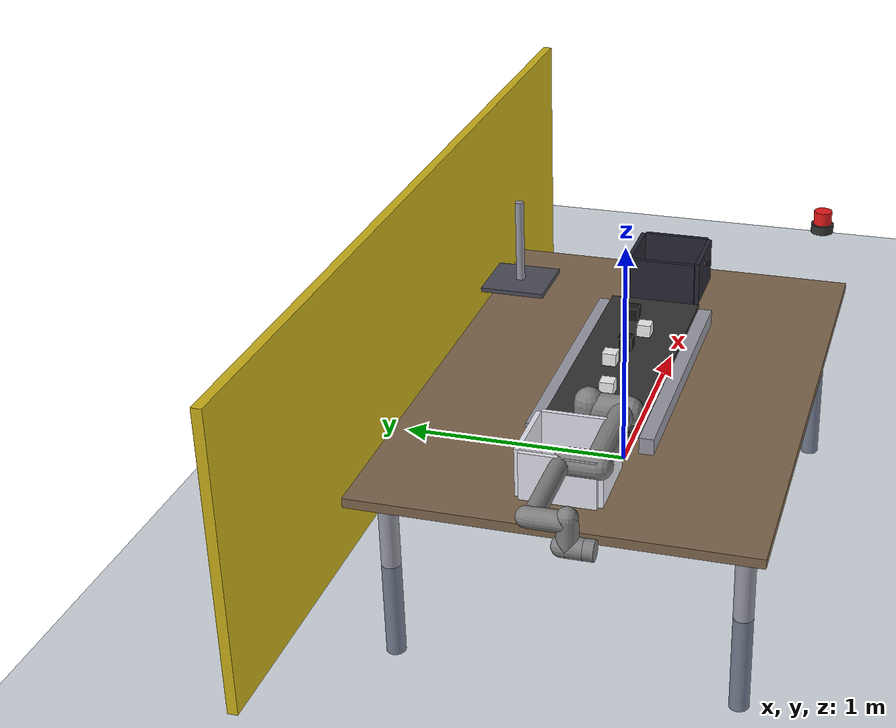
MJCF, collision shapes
<mujoco model="ur5e_sorting_station">
  <compiler angle="radian" autolimits="true"/>

  <option integrator="implicitfast" timestep="0.002"/>

  <visual>
    <headlight diffuse="0.6 0.6 0.6" ambient="0.3 0.3 0.3" specular="0 0 0"/>
    <rgba haze="0.15 0.25 0.35 1"/>
    <global azimuth="120" elevation="-20"/>
  </visual>

  <asset>
    <texture type="skybox" builtin="gradient" rgb1="0.3 0.5 0.7" rgb2="0 0 0" width="512" height="512"/>
    <texture name="groundplane" type="2d" builtin="checker" rgb1="0.2 0.3 0.4" rgb2="0.1 0.2 0.3" width="300" height="300" mark="edge" markrgb="0.8 0.8 0.8"/>
    <material name="groundplane" texture="groundplane" texrepeat="5 5" texuniform="true" reflectance="0.2"/>

    <!-- Conveyor textures -->
    <texture name="conveyor_belt" type="2d" builtin="checker" rgb1="0.15 0.15 0.15" rgb2="0.25 0.25 0.25" width="100" height="100"/>
    <material name="conveyor_mat" texture="conveyor_belt" texrepeat="20 2" reflectance="0.1"/>

    <!-- Box materials -->
    <material name="white_box" rgba="0.95 0.95 0.95 1" specular="0.5" shininess="0.3"/>
    <material name="black_box" rgba="0.1 0.1 0.1 1" specular="0.3" shininess="0.2"/>

    <!-- Bin materials -->
    <material name="white_bin" rgba="0.9 0.9 0.95 0.8" specular="0.3" shininess="0.2"/>
    <material name="black_bin" rgba="0.15 0.15 0.2 0.8" specular="0.3" shininess="0.2"/>

    <!-- Environment materials -->
    <material name="table" rgba="0.5 0.4 0.3 1"/>
    <material name="metal" rgba="0.6 0.6 0.65 1" specular="0.8" shininess="0.5"/>
    <material name="plastic" rgba="0.3 0.3 0.35 1" specular="0.2" shininess="0.1"/>

    <!-- UR5e mesh assets -->
    <mesh file="assets/base_0.obj"/>
    <mesh file="assets/base_1.obj"/>
    <mesh file="assets/shoulder_0.obj"/>
    <mesh file="assets/shoulder_1.obj"/>
    <mesh file="assets/shoulder_2.obj"/>
    <mesh file="assets/upperarm_0.obj"/>
    <mesh file="assets/upperarm_1.obj"/>
    <mesh file="assets/upperarm_2.obj"/>
    <mesh file="assets/upperarm_3.obj"/>
    <mesh file="assets/forearm_0.obj"/>
    <mesh file="assets/forearm_1.obj"/>
    <mesh file="assets/forearm_2.obj"/>
    <mesh file="assets/forearm_3.obj"/>
    <mesh file="assets/wrist1_0.obj"/>
    <mesh file="assets/wrist1_1.obj"/>
    <mesh file="assets/wrist1_2.obj"/>
    <mesh file="assets/wrist2_0.obj"/>
    <mesh file="assets/wrist2_1.obj"/>
    <mesh file="assets/wrist2_2.obj"/>
    <mesh file="assets/wrist3.obj"/>

    <!-- UR5e materials -->
    <material name="black" rgba="0.033 0.033 0.033 1"/>
    <material name="jointgray" rgba="0.278 0.278 0.278 1"/>
    <material name="linkgray" rgba="0.82 0.82 0.82 1"/>
    <material name="urblue" rgba="0.49 0.678 0.8 1"/>
  </asset>

  <default>
    <geom contype="1" conaffinity="1" friction="1 0.5 0.005"/>
    <joint damping="1" armature="0.01"/>
    <default class="box_collision">
      <geom type="box" size="0.025 0.025 0.025" mass="0.05" material="white_box"/>
    </default>
    <default class="ur5e">
      <material specular="0.5" shininess="0.25"/>
      <joint axis="0 1 0" range="-6.28319 6.28319" armature="0.1"/>
      <general gaintype="fixed" biastype="affine" ctrlrange="-6.2831 6.2831" gainprm="2000" biasprm="0 -2000 -400"
        forcerange="-150 150"/>
      <default class="size3">
        <default class="size3_limited">
          <joint range="-3.1415 3.1415"/>
          <general ctrlrange="-3.1415 3.1415"/>
        </default>
      </default>
      <default class="size1">
        <general gainprm="500" biasprm="0 -500 -100" forcerange="-28 28"/>
      </default>
      <default class="visual">
        <geom type="mesh" contype="0" conaffinity="0" group="2"/>
      </default>
      <default class="collision">
        <geom type="capsule" group="3"/>
        <default class="eef_collision">
          <geom type="cylinder"/>
        </default>
      </default>
      <site size="0.001" rgba="0.5 0.5 0.5 0.3" group="4"/>
    </default>
  </default>

  <worldbody>
    <!-- Lighting -->
    <light pos="0 0 3" dir="0 0 -1" directional="false" cutoff="60" exponent="1" diffuse="0.5 0.5 0.5" specular="0.3 0.3 0.3"/>
    <light pos="2 2 3" dir="-0.5 -0.5 -1" directional="false" cutoff="60" exponent="1" diffuse="0.4 0.4 0.4" specular="0.2 0.2 0.2"/>
    <light pos="-2 -2 3" dir="0.5 0.5 -1" directional="false" cutoff="60" exponent="1" diffuse="0.4 0.4 0.4" specular="0.2 0.2 0.2"/>

    <!-- Ground -->
    <geom name="floor" type="plane" size="5 5 0.1" material="groundplane" condim="3"/>

    <!-- Main work table -->
    <body name="work_table" pos="0 0 0.4">
      <geom name="table_top" type="box" size="1.2 0.8 0.02" pos="0 0 -0.02" material="table" mass="50"/>
      <geom name="table_leg1" type="cylinder" size="0.04 0.4" pos="1.0 0.7 -0.42" material="metal" mass="5"/>
      <geom name="table_leg2" type="cylinder" size="0.04 0.4" pos="1.0 -0.7 -0.42" material="metal" mass="5"/>
      <geom name="table_leg3" type="cylinder" size="0.04 0.4" pos="-1.0 0.7 -0.42" material="metal" mass="5"/>
      <geom name="table_leg4" type="cylinder" size="0.04 0.4" pos="-1.0 -0.7 -0.42" material="metal" mass="5"/>
    </body>

    <!-- Conveyor Belt System -->
    <body name="conveyor_base" pos="0 0 0.42">
      <!-- Conveyor frame -->
      <geom name="conveyor_frame_left" type="box" size="0.6 0.03 0.05" pos="0 -0.23 0" material="metal" mass="10"/>
      <geom name="conveyor_frame_right" type="box" size="0.6 0.03 0.05" pos="0 0.23 0" material="metal" mass="10"/>

      <!-- Conveyor belt surface (moving part would need actuator in real system) -->
      <geom name="conveyor_belt" type="box" size="0.6 0.2 0.01" pos="0 0 0.06" material="conveyor_mat" mass="5" friction="0.8 0.4 0.002"/>

      <!-- Conveyor support -->
      <geom name="conveyor_support1" type="cylinder" size="0.03 0.05" pos="-0.5 -0.23 -0.05" material="metal"/>
      <geom name="conveyor_support2" type="cylinder" size="0.03 0.05" pos="-0.5 0.23 -0.05" material="metal"/>
      <geom name="conveyor_support3" type="cylinder" size="0.03 0.05" pos="0.5 -0.23 -0.05" material="metal"/>
      <geom name="conveyor_support4" type="cylinder" size="0.03 0.05" pos="0.5 0.23 -0.05" material="metal"/>
    </body>

    <!-- White Boxes on conveyor (3 white boxes) -->
    <body name="white_box_1" pos="-0.3 0 0.515">
      <freejoint/>
      <geom name="wb1_geom" type="box" size="0.03 0.03 0.03" material="white_box" mass="0.08" friction="1.0 0.5 0.005"/>
      <site name="wb1_center" pos="0 0 0" size="0.005"/>
    </body>

    <body name="white_box_2" pos="-0.05 0.05 0.515">
      <freejoint/>
      <geom name="wb2_geom" type="box" size="0.03 0.03 0.03" material="white_box" mass="0.08" friction="1.0 0.5 0.005"/>
      <site name="wb2_center" pos="0 0 0" size="0.005"/>
    </body>

    <body name="white_box_3" pos="0.25 -0.03 0.515">
      <freejoint/>
      <geom name="wb3_geom" type="box" size="0.03 0.03 0.03" material="white_box" mass="0.08" friction="1.0 0.5 0.005"/>
      <site name="wb3_center" pos="0 0 0" size="0.005"/>
    </body>

    <!-- Black Boxes on conveyor (3 black boxes) -->
    <body name="black_box_1" pos="-0.45 -0.04 0.515">
      <freejoint/>
      <geom name="bb1_geom" type="box" size="0.03 0.03 0.03" material="black_box" mass="0.08" friction="1.0 0.5 0.005"/>
      <site name="bb1_center" pos="0 0 0" size="0.005"/>
    </body>

    <body name="black_box_2" pos="0.1 0.02 0.515">
      <freejoint/>
      <geom name="bb2_geom" type="box" size="0.03 0.03 0.03" material="black_box" mass="0.08" friction="1.0 0.5 0.005"/>
      <site name="bb2_center" pos="0 0 0" size="0.005"/>
    </body>

    <body name="black_box_3" pos="0.4 0.06 0.515">
      <freejoint/>
      <geom name="bb3_geom" type="box" size="0.03 0.03 0.03" material="black_box" mass="0.08" friction="1.0 0.5 0.005"/>
      <site name="bb3_center" pos="0 0 0" size="0.005"/>
    </body>

    <!-- Left Sorting Bin (for white boxes) -->
    <body name="white_bin" pos="-0.9 0 0.42">
      <!-- Bin base -->
      <geom name="white_bin_base" type="box" size="0.15 0.15 0.01" pos="0 0 0" material="white_bin" mass="2"/>
      <!-- Bin walls -->
      <geom name="white_bin_wall_front" type="box" size="0.15 0.01 0.1" pos="0 -0.16 0.1" material="white_bin" mass="0.5"/>
      <geom name="white_bin_wall_back" type="box" size="0.15 0.01 0.1" pos="0 0.16 0.1" material="white_bin" mass="0.5"/>
      <geom name="white_bin_wall_left" type="box" size="0.01 0.15 0.1" pos="-0.16 0 0.1" material="white_bin" mass="0.5"/>
      <geom name="white_bin_wall_right" type="box" size="0.01 0.15 0.1" pos="0.16 0 0.1" material="white_bin" mass="0.5"/>

      <!-- Label -->
      <site name="white_bin_label" pos="0 -0.17 0.15" size="0.02" rgba="1 1 1 1"/>
    </body>

    <!-- Right Sorting Bin (for black boxes) -->
    <body name="black_bin" pos="0.9 0 0.42">
      <!-- Bin base -->
      <geom name="black_bin_base" type="box" size="0.15 0.15 0.01" pos="0 0 0" material="black_bin" mass="2"/>
      <!-- Bin walls -->
      <geom name="black_bin_wall_front" type="box" size="0.15 0.01 0.1" pos="0 -0.16 0.1" material="black_bin" mass="0.5"/>
      <geom name="black_bin_wall_back" type="box" size="0.15 0.01 0.1" pos="0 0.16 0.1" material="black_bin" mass="0.5"/>
      <geom name="black_bin_wall_left" type="box" size="0.01 0.15 0.1" pos="-0.16 0 0.1" material="black_bin" mass="0.5"/>
      <geom name="black_bin_wall_right" type="box" size="0.01 0.15 0.1" pos="0.16 0 0.1" material="black_bin" mass="0.5"/>

      <!-- Label -->
      <site name="black_bin_label" pos="0 -0.17 0.15" size="0.02" rgba="0.1 0.1 0.1 1"/>
    </body>

    <!-- UR5e Robot Arm -->
    <body name="base" pos="-0.6 0 0.42" quat="0 0 0 -1" childclass="ur5e">
      <inertial mass="4.0" pos="0 0 0" diaginertia="0.00443333156 0.00443333156 0.0072"/>
      <geom mesh="base_0" material="black" class="visual"/>
      <geom mesh="base_1" material="jointgray" class="visual"/>
      <body name="shoulder_link" pos="0 0 0.163">
        <inertial mass="3.7" pos="0 0 0" diaginertia="0.0102675 0.0102675 0.00666"/>
        <joint name="shoulder_pan_joint" class="size3" axis="0 0 1"/>
        <geom mesh="shoulder_0" material="urblue" class="visual"/>
        <geom mesh="shoulder_1" material="black" class="visual"/>
        <geom mesh="shoulder_2" material="jointgray" class="visual"/>
        <geom class="collision" size="0.06 0.06" pos="0 0 -0.04"/>
        <body name="upper_arm_link" pos="0 0.138 0" quat="1 0 1 0">
          <inertial mass="8.393" pos="0 0 0.2125" diaginertia="0.133886 0.133886 0.0151074"/>
          <joint name="shoulder_lift_joint" class="size3"/>
          <geom mesh="upperarm_0" material="linkgray" class="visual"/>
          <geom mesh="upperarm_1" material="black" class="visual"/>
          <geom mesh="upperarm_2" material="jointgray" class="visual"/>
          <geom mesh="upperarm_3" material="urblue" class="visual"/>
          <geom class="collision" pos="0 -0.04 0" quat="1 1 0 0" size="0.06 0.06"/>
          <geom class="collision" size="0.05 0.2" pos="0 0 0.2"/>
          <body name="forearm_link" pos="0 -0.131 0.425">
            <inertial mass="2.275" pos="0 0 0.196" diaginertia="0.0311796 0.0311796 0.004095"/>
            <joint name="elbow_joint" class="size3_limited"/>
            <geom mesh="forearm_0" material="urblue" class="visual"/>
            <geom mesh="forearm_1" material="linkgray" class="visual"/>
            <geom mesh="forearm_2" material="black" class="visual"/>
            <geom mesh="forearm_3" material="jointgray" class="visual"/>
            <geom class="collision" pos="0 0.08 0" quat="1 1 0 0" size="0.055 0.06"/>
            <geom class="collision" size="0.038 0.19" pos="0 0 0.2"/>
            <body name="wrist_1_link" pos="0 0 0.392" quat="1 0 1 0">
              <inertial mass="1.219" pos="0 0.127 0" diaginertia="0.0025599 0.0025599 0.0021942"/>
              <joint name="wrist_1_joint" class="size1"/>
              <geom mesh="wrist1_0" material="black" class="visual"/>
              <geom mesh="wrist1_1" material="urblue" class="visual"/>
              <geom mesh="wrist1_2" material="jointgray" class="visual"/>
              <geom class="collision" pos="0 0.05 0" quat="1 1 0 0" size="0.04 0.07"/>
              <body name="wrist_2_link" pos="0 0.127 0">
                <inertial mass="1.219" pos="0 0 0.1" diaginertia="0.0025599 0.0025599 0.0021942"/>
                <joint name="wrist_2_joint" axis="0 0 1" class="size1"/>
                <geom mesh="wrist2_0" material="black" class="visual"/>
                <geom mesh="wrist2_1" material="urblue" class="visual"/>
                <geom mesh="wrist2_2" material="jointgray" class="visual"/>
                <geom class="collision" size="0.04 0.06" pos="0 0 0.04"/>
                <geom class="collision" pos="0 0.02 0.1" quat="1 1 0 0" size="0.04 0.04"/>
                <body name="wrist_3_link" pos="0 0 0.1">
                  <inertial mass="0.1889" pos="0 0.0771683 0" quat="1 0 0 1"
                    diaginertia="0.000132134 9.90863e-05 9.90863e-05"/>
                  <joint name="wrist_3_joint" class="size1"/>
                  <geom material="linkgray" mesh="wrist3" class="visual"/>
                  <geom class="eef_collision" pos="0 0.08 0" quat="1 1 0 0" size="0.04 0.02"/>
                  <site name="attachment_site" pos="0 0.1 0" quat="-1 1 0 0"/>
                </body>
              </body>
            </body>
          </body>
        </body>
      </body>
    </body>

    <!-- Safety Fence (optional) -->
    <body name="safety_fence_back" pos="0 0.9 0.6">
      <geom name="fence_back" type="box" size="2 0.02 0.6" material="metal" rgba="0.8 0.7 0.1 0.3" mass="5"/>
    </body>

    <!-- Tool rack (for future tools) -->
    <body name="tool_rack" pos="0.8 0.7 0.42">
      <geom name="rack_base" type="box" size="0.15 0.15 0.01" material="plastic" mass="1"/>
      <geom name="rack_post" type="cylinder" size="0.02 0.2" pos="0 0 0.2" material="metal" mass="0.5"/>
    </body>

    <!-- Emergency stop button -->
    <body name="estop_button" pos="0.9 -0.7 0.8">
      <geom name="estop_base" type="cylinder" size="0.05 0.02" material="plastic" rgba="0.2 0.2 0.2 1" mass="0.1"/>
      <geom name="estop_button_top" type="cylinder" size="0.04 0.03" pos="0 0 0.05" material="plastic" rgba="0.9 0.1 0.1 1" mass="0.05"/>
    </body>

  </worldbody>

  <actuator>
    <general class="size3" name="shoulder_pan" joint="shoulder_pan_joint"/>
    <general class="size3" name="shoulder_lift" joint="shoulder_lift_joint"/>
    <general class="size3_limited" name="elbow" joint="elbow_joint"/>
    <general class="size1" name="wrist_1" joint="wrist_1_joint"/>
    <general class="size1" name="wrist_2" joint="wrist_2_joint"/>
    <general class="size1" name="wrist_3" joint="wrist_3_joint"/>
  </actuator>

  <!-- Contact parameters for realistic interactions -->
  <contact>
    <exclude body1="white_bin" body2="white_bin"/>
    <exclude body1="black_bin" body2="black_bin"/>
  </contact>

  <sensor>
    <!-- Box position sensors -->
    <framepos name="wb1_pos" objtype="site" objname="wb1_center"/>
    <framepos name="wb2_pos" objtype="site" objname="wb2_center"/>
    <framepos name="wb3_pos" objtype="site" objname="wb3_center"/>
    <framepos name="bb1_pos" objtype="site" objname="bb1_center"/>
    <framepos name="bb2_pos" objtype="site" objname="bb2_center"/>
    <framepos name="bb3_pos" objtype="site" objname="bb3_center"/>
  </sensor>

  <keyframe>
    <key name="home"
         qpos="-1.5708 -1.5708 1.5708 -1.5708 -1.5708 0
                -0.3 0 0.515 1 0 0 0
                -0.05 0.05 0.515 1 0 0 0
                0.25 -0.03 0.515 1 0 0 0
                -0.45 -0.04 0.515 1 0 0 0
                0.1 0.02 0.515 1 0 0 0
                0.4 0.06 0.515 1 0 0 0"
         ctrl="-1.5708 -1.5708 1.5708 -1.5708 -1.5708 0"/>
  </keyframe>

</mujoco>
